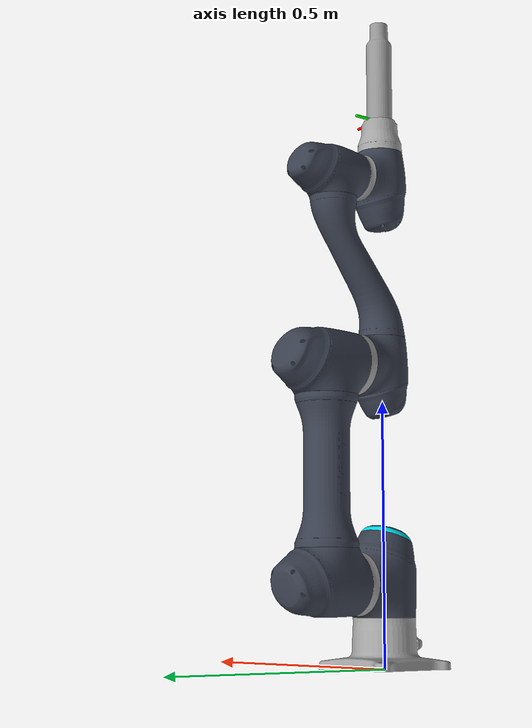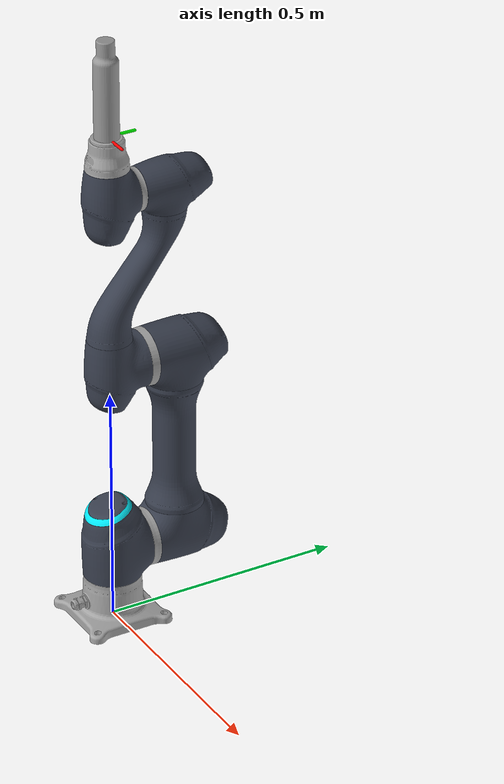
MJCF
<mujoco model="a0509">
<compiler angle="radian" meshdir="assets" autolimits="true"/>

  <asset>
    <mesh name="A0509_0_0" file="A0509_0_0.stl" scale="0.001 0.001 0.001"/>
    <mesh name="A0509_1_0" file="A0509_1_0.stl" scale="0.001 0.001 0.001"/>
    <mesh name="A0509_1_1" file="A0509_1_1.stl" scale="0.001 0.001 0.001"/>
    <mesh name="A0509_1_2" file="A0509_1_2.stl" scale="0.001 0.001 0.001"/>
    <mesh name="A0509_2_0" file="A0509_2_0.stl" scale="0.001 0.001 0.001"/>
    <mesh name="A0509_2_1" file="A0509_2_1.stl" scale="0.001 0.001 0.001"/>
    <mesh name="A0509_2_2" file="A0509_2_2.stl" scale="0.001 0.001 0.001"/>
    <mesh name="A0509_3_0" file="A0509_3_0.stl" scale="0.001 0.001 0.001"/>
    <mesh name="A0509_3_1" file="A0509_3_1.stl" scale="0.001 0.001 0.001"/>
    <mesh name="A0509_4_0" file="A0509_4_0.stl" scale="0.001 0.001 0.001"/>
    <mesh name="A0509_4_1" file="A0509_4_1.stl" scale="0.001 0.001 0.001"/>
    <mesh name="A0509_5_0" file="A0509_5_0.stl" scale="0.001 0.001 0.001"/>
    <mesh name="A0509_5_1" file="A0509_5_1.stl" scale="0.001 0.001 0.001"/>
    <mesh name="A0509_6_0" file="A0509_6_0.stl" scale="0.001 0.001 0.001"/>

    <material name="blue" rgba="0.227 0.251 0.31 1"/>
    <material name="metal" rgba="0.65 0.65 0.65 1"/>
    <material name="sky_blue" rgba="0.016 0.933 0.992 1.0"/>
  <mesh name="tool_mesh" file="painting_gun.obj"/>
    <!-- Painting gun collision mesh -->
    <mesh name="painting_gun_collision_mesh" file="painting_gun.obj"/>
  </asset>

  <worldbody>
    <body name="base" pos="0 0 0.0" quat="1 0 0 0">
      <geom type="capsule" fromto="0 0 0 0.08 0 0" rgba="1 0 0 1" size="0.003" contype="0" conaffinity="0"/>
      <geom type="capsule" fromto="0 0 0 0 0.08 0" rgba="0 1 0 1" size="0.003" contype="0" conaffinity="0"/>
      <geom type="capsule" fromto="0 0 0 0 0 0.08" rgba="0 0 1 1" size="0.003" contype="0" conaffinity="0"/>
      <geom type="mesh" contype="1" conaffinity="1" group="1" density="0" mesh="A0509_0_0" material="metal"/>

      <body name="link_1" pos="0 0 0.1560">
        <inertial pos="-6.9e-05 0.024423 -0.007375" quat="0.626042 0.779776 -0.00329495 0.00321293" mass="3.715" diaginertia="0.0189902 0.017021 0.0135698"/>
        <joint name="joint_1" pos="0 0 0" axis="0 0 1" range="-6.2832 6.2832" actuatorfrcrange="-194 194" damping="800"/>
        <geom type="mesh" contype="1" conaffinity="1" group="1" density="0" mesh="A0509_1_0" material="metal"/>
        <geom type="mesh" contype="1" conaffinity="1" group="1" density="0" mesh="A0509_1_1" material="blue"/>
        <geom type="mesh" contype="1" conaffinity="1" group="1" density="0" mesh="A0509_1_2" material="sky_blue"/>
        <body name="link_2" quat="0.499898 -0.500102 -0.5 -0.5">
          <inertial pos="0.20449 0 0.13271" quat="0.499405 0.500811 0.499197 0.500585" mass="6.837" diaginertia="0.25627 0.25442 0.019399"/>
          <joint name="joint_2" pos="0 0 0" axis="0 0 1" range="-6.2832 6.2832" actuatorfrcrange="-194 194" damping="800"/>
          <geom type="mesh" contype="1" conaffinity="1" group="1" density="0" mesh="A0509_2_0" material="blue"/>
          <geom type="mesh" contype="1" conaffinity="1" group="1" density="0" mesh="A0509_2_1" material="blue"/>
          <geom type="mesh" contype="1" conaffinity="1" group="1" density="0" mesh="A0509_2_2" material="blue"/>
          <body name="link_3" pos="0.409 0 0" quat="0.707035 0 0 0.707179">
            <inertial pos="7.1e-05 -0.005123 0.033009" quat="0.704152 -0.0338098 0.031631 0.708538" mass="2.769" diaginertia="0.013912 0.012526 0.00877466"/>
            <joint name="joint_3" pos="0 0 0" axis="0 0 1" range="-2.7925 2.7925" actuatorfrcrange="-163 163" damping="800"/>
            <geom type="mesh" contype="1" conaffinity="1" group="1" density="0" mesh="A0509_3_0" material="metal"/>
            <geom type="mesh" contype="1" conaffinity="1" group="1" density="0" mesh="A0509_3_1" material="blue"/>
            <body name="link_4" pos="0 -0.367 0" quat="0.707035 0.707179 0 0">
              <inertial pos="-8.6e-05 0.086348 -0.086031" quat="0.983575 -0.180483 0.000213119 0.00238692" mass="2.679" diaginertia="0.0560681 0.0528175 0.00763342"/>
              <joint name="joint_4" pos="0 0 0" axis="0 0 1" range="-6.2832 6.2832" actuatorfrcrange="-50 50" damping="600"/>
              <geom type="mesh" contype="1" conaffinity="1" group="1" density="0" mesh="A0509_4_0" material="blue"/>
              <geom type="mesh" contype="1" conaffinity="1" group="1" density="0" mesh="A0509_4_1" material="blue"/>
              <body name="link_5" quat="0.707035 -0.707179 0 0">
                <inertial pos="9.1e-05 -0.006457 0.015434" quat="0.480275 0.522032 -0.522242 0.473372" mass="2.051" diaginertia="0.0104696 0.00907878 0.00845556"/>
                <joint name="joint_5" pos="0 0 0" axis="0 0 1" range="-6.2832 6.2832" actuatorfrcrange="-50 50" damping="600"/>
                <geom type="mesh" contype="1" conaffinity="1" group="1" density="0" mesh="A0509_5_0" material="metal"/>
                <geom type="mesh" contype="1" conaffinity="1" group="1" density="0" mesh="A0509_5_1" material="blue"/>
                <body name="link_6" pos="0 -0.124 0" quat="0.707035 0.707179 0 0">
                  <inertial pos="-2.2e-05 -7e-06 -0.051746" quat="0.999989 0.00141825 -0.000201627 0.0044558" mass="0.773" diaginertia="0.00874837 0.00785656 0.00444517"/>
                  <joint name="joint_6" pos="0 0 0" axis="0 0 1" range="-6.2832 6.2832" actuatorfrcrange="-50 50" damping="600"/>
                  <geom type="mesh" contype="1" conaffinity="1" group="1" density="0" mesh="A0509_6_0" material="metal"/>

                  <site name="ee_site" pos="0 0.0 0" quat="1.0 0.0 0 0"/>

                  <!-- Replace tool frames with Hande gripper -->
                  <body name="ee_frame_visual_only" pos="0 0.0 0" quat="1 0 0 0">
                    <geom type="capsule" fromto="0 0 0 0.05 0 0" rgba="1 0 0 1" size="0.002"/>
                    <geom type="capsule" fromto="0 0 0 0 0.05 0" rgba="0 1 0 1" size="0.002"/>
                    <geom type="capsule" fromto="0 0 0 0 0 0.05" rgba="0 0 1 1" size="0.002"/>

                    <!-- 'Movable frame' inside the gripper fingers -->
                    <body name="tool_frame" pos="0 0 0.0" quat="1 0 0 0">
                      <site name="tool_site" pos="0 0.0 0.0" quat="1 0 0 0"/>
                      <geom type="capsule" fromto="0 0 0 0.06 0 0" rgba="1 0 0 1" size="0.003" contype="0" conaffinity="0"/>
                      <geom type="capsule" fromto="0 0 0 0 0.06 0" rgba="0 1 0 1" size="0.003" contype="0" conaffinity="0"/>
                      <geom type="capsule" fromto="0 0 0 0 0 0.06" rgba="0 0 1 1" size="0.003" contype="0" conaffinity="0"/>
                    </body>
                  <body name="tool_base" pos="0 0 0">
      <inertial mass="0.752" pos="0.0 0.0 0.01" diaginertia="0.0143 0.0143 0.0016"/>
      <geom type="mesh" mesh="tool_mesh" rgba="0.6 0.6 0.6 1" contype="0" conaffinity="0" group="0"/>
      <!-- collision mesh -->
      <geom name="painting_gun_collision" type="mesh" mesh="painting_gun_collision_mesh" pos="0 0 0.0" rgba="0.7 0.1 0.1 0.3" contype="1" conaffinity="1" group="3"/>
      <!-- Marker (red sphere) to specify the origin -->
      <site name="mount_site" pos="0 0 0" size="0.005" rgba="1 0 0 1"/>
      <!-- Marker (green sphere) to specify the point of application of the weight -->
    </body>
  </body>

                </body>
              </body>
            </body>
          </body>
        </body>
      </body>
    </body>
  </worldbody>

	<actuator>
		<position joint="joint_1" kp="10" kv="1" ctrlrange="-6.2832 6.2832"/>
		<position joint="joint_2" kp="10" kv="1" ctrlrange="-6.2832 6.2832"/>
		<position joint="joint_3" kp="10" kv="1" ctrlrange="-2.7925 2.7925"/>
		<position joint="joint_4" kp="10" kv="1" ctrlrange="-6.2832 6.2832"/>
		<position joint="joint_5" kp="10" kv="1" ctrlrange="-6.2832 6.2832"/>
		<position joint="joint_6" kp="10" kv="1" ctrlrange="-6.2832 6.2832"/>
	</actuator>

</mujoco>
